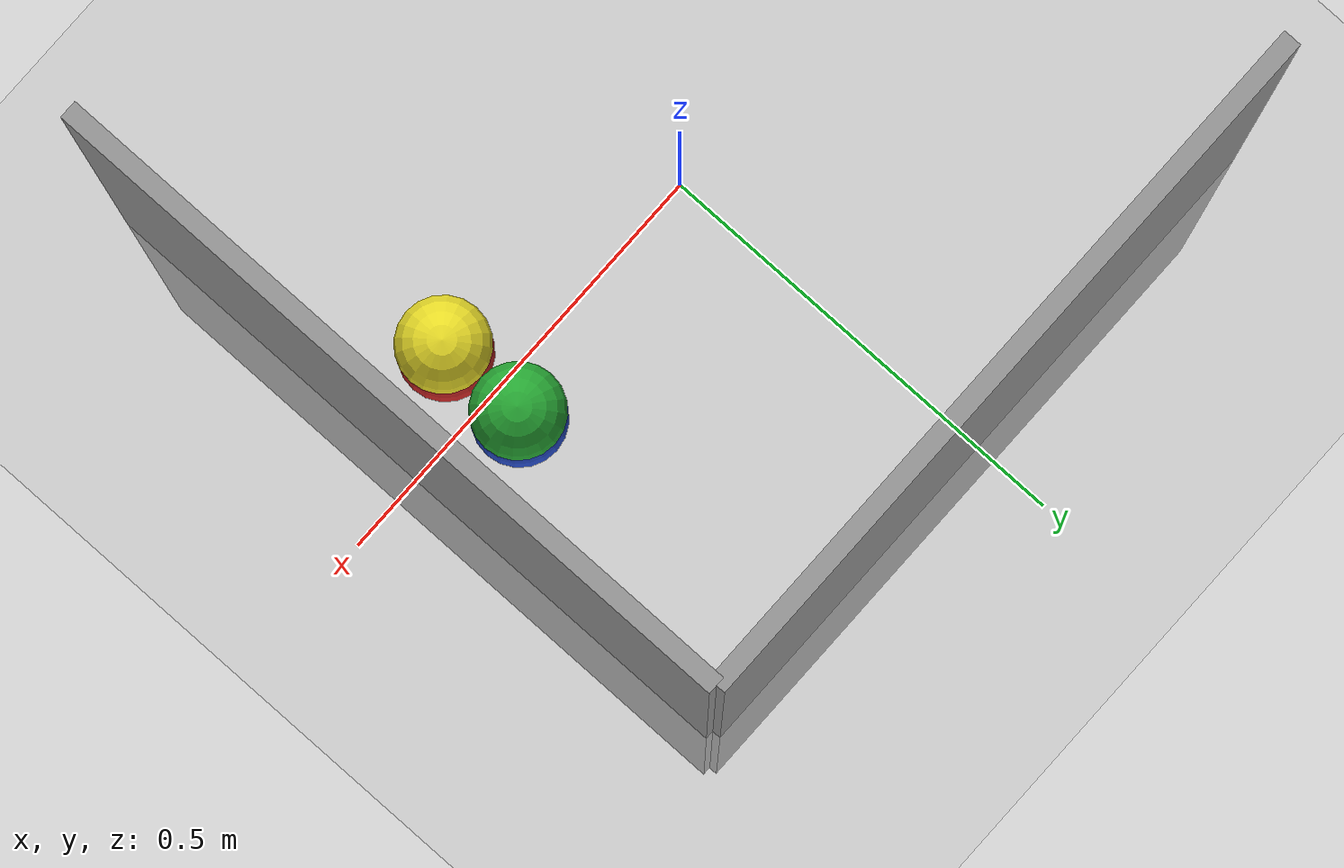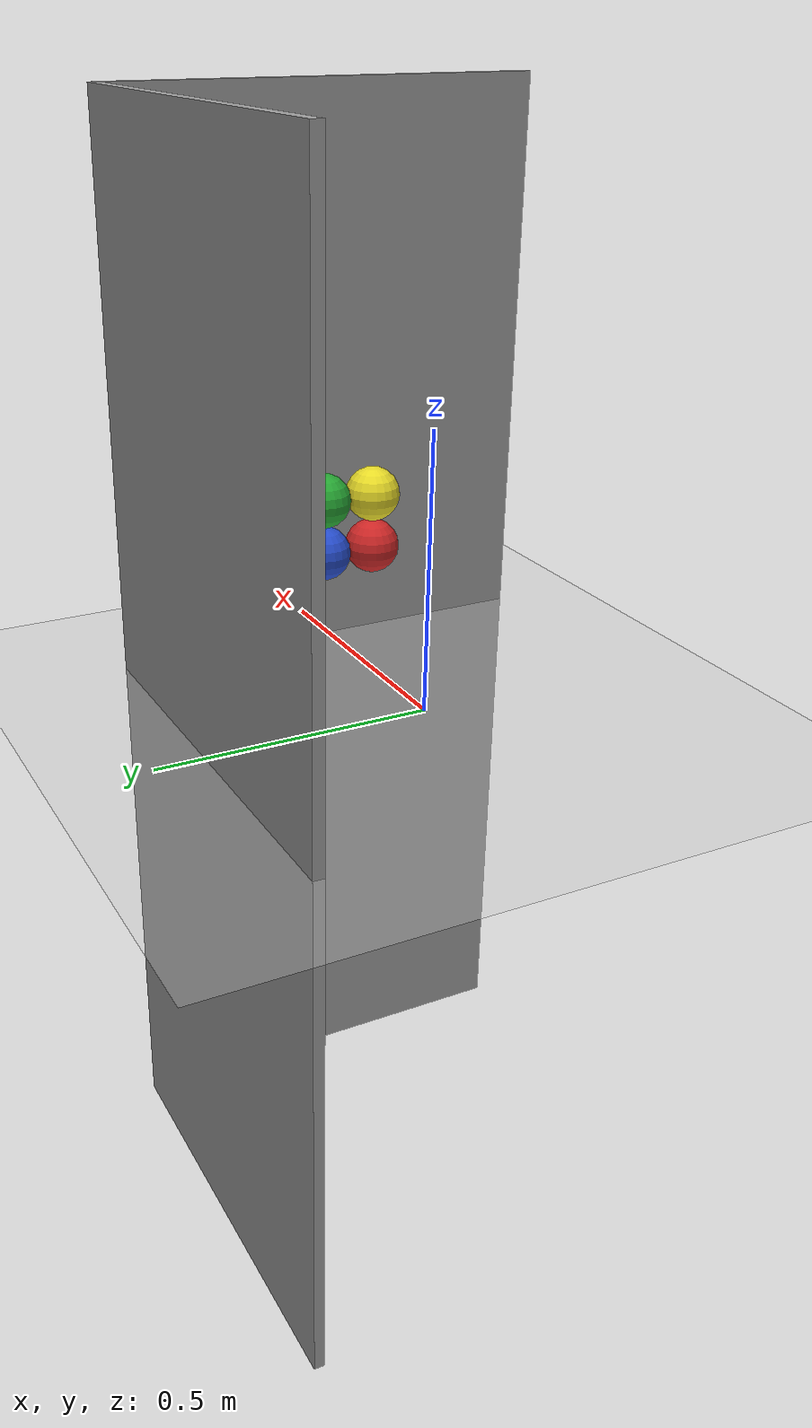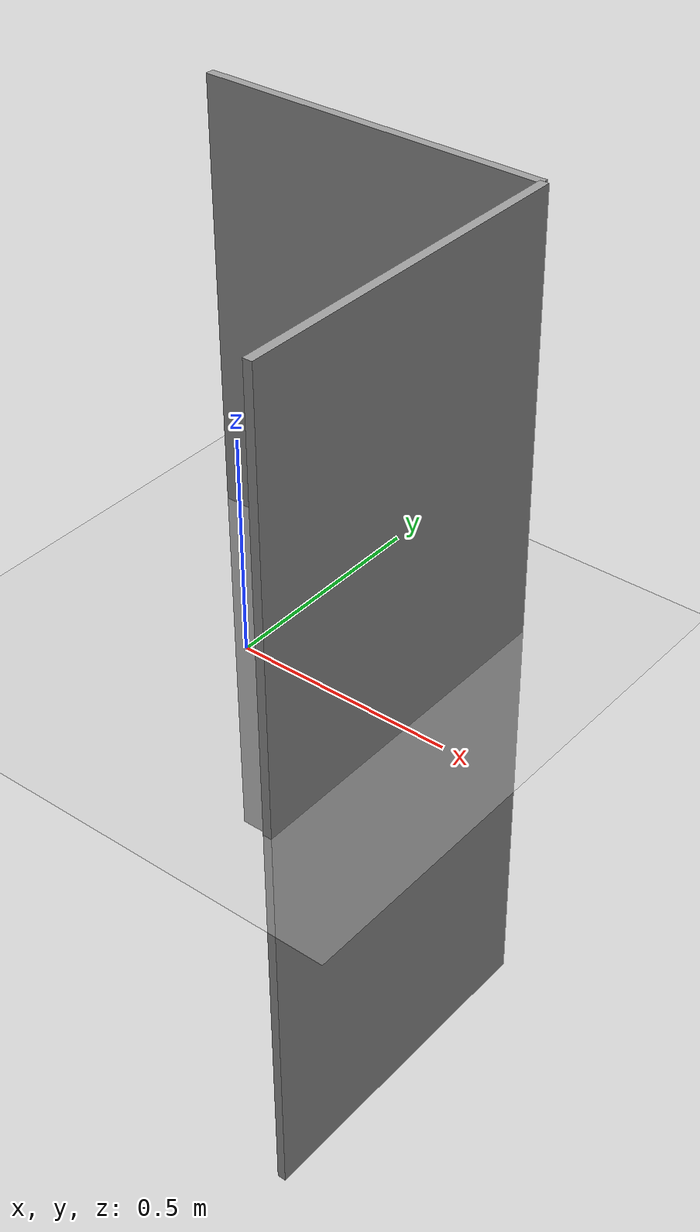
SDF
<?xml version="1.0" ?>
<sdf version="1.4">
  <world name="default">
    <!-- A global light source -->
    <include>
      <uri>model://sun</uri>
    </include>
    <!-- A ground plane -->
    <include>
      <uri>model://ground_plane</uri>
    </include>

    <physics type='ode'>
      <max_step_size>0.001</max_step_size>
      <real_time_factor>1</real_time_factor>
      <real_time_update_rate>1000</real_time_update_rate>
      <gravity>0 0 0</gravity>
    </physics>

	  <model name="box1">
      <pose>0.3 -0.05 0.2 0 0 0</pose>
      <link name="link">

        <visual name="visual">
          <geometry>
	    <sphere>
	       <radius>0.05</radius>
	    </sphere>
          </geometry>
	 <material>
	   <script>
	     <name>Gazebo/Red</name>
	     <uri>file://media/materials/scripts/gazebo.material</uri>
	   </script>
	 </material>
        </visual>
      </link>

    </model>

    <model name="box2">
      <pose>0.3 0.05 0.2 0 0 0</pose>
      <link name="link">

        <visual name="visual">
          <geometry>
	    <sphere>
	       <radius>0.05</radius>
	    </sphere>
          </geometry>
	 <material>
	   <script>
	     <name>Gazebo/Blue</name>
	     <uri>file://media/materials/scripts/gazebo.material</uri>
	   </script>
	 </material>
        </visual>
      </link>

    </model>

    <model name="box3">
      <pose>0.3 0.05 0.3 0 0 0</pose>
      <link name="link">

        <visual name="visual">
          <geometry>
	    <sphere>
	       <radius>0.05</radius>
	    </sphere>
          </geometry>
	 <material>
	   <script>
	     <name>Gazebo/Green</name>
	     <uri>file://media/materials/scripts/gazebo.material</uri>
	   </script>
	 </material>
        </visual>
      </link>

    </model>

    <model name="box4">
      <pose>0.3 -0.05 0.3 0 0 0</pose>
      <link name="link">

        <visual name="visual">
          <geometry>
	    <sphere>
	       <radius>0.05</radius>
	    </sphere>
          </geometry>
	 <material>
	   <script>
	     <name>Gazebo/Yellow</name>
	     <uri>file://media/materials/scripts/gazebo.material</uri>
	   </script>
	 </material>
        </visual>
      </link>

    </model>
        <model name="box_wall">
      <pose>0.4 0.0 0 0 0 0</pose>
      <link name="link">

        <visual name="visual">
          <geometry>
	            <box>
                <size>.02 0.8 2</size>
              </box>
          </geometry>
	 <material>
	   <script>
	     <name>Gazebo/Grey</name>
	     <uri>file://media/materials/scripts/gazebo.material</uri>
	   </script>
	 </material>
        </visual>
      </link>

    </model>
     <model name="box_wall2">
      <pose>0 0.4 0 0 0 0</pose>
      <link name="link">

        <visual name="visual">
          <geometry>
	            <box>
                <size>0.8 0.02 2</size>
              </box>
          </geometry>
	 <material>
	   <script>
	     <name>Gazebo/Grey</name>
	     <uri>file://media/materials/scripts/gazebo.material</uri>
	   </script>
	 </material>
        </visual>
      </link>

    </model>
  </world>
</sdf>
